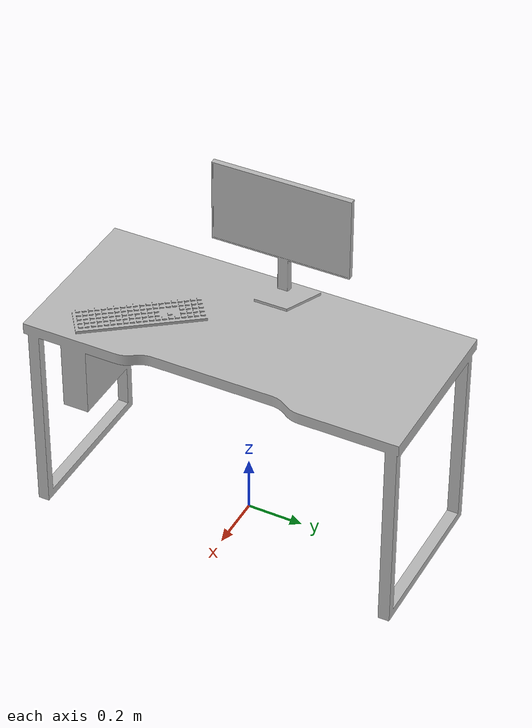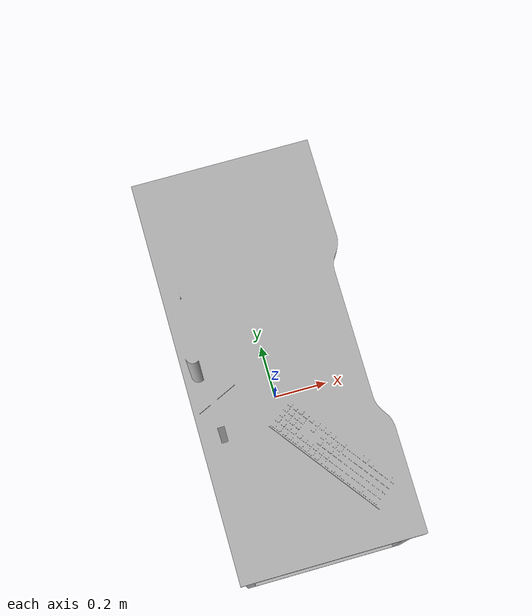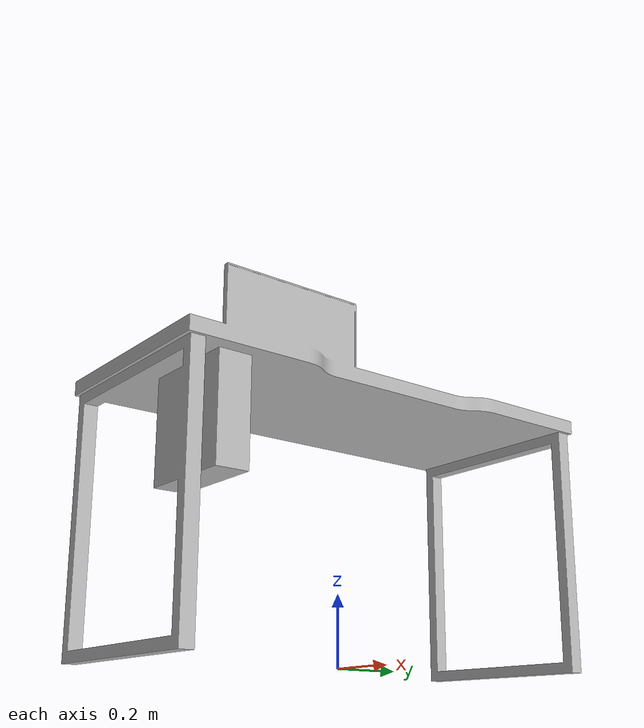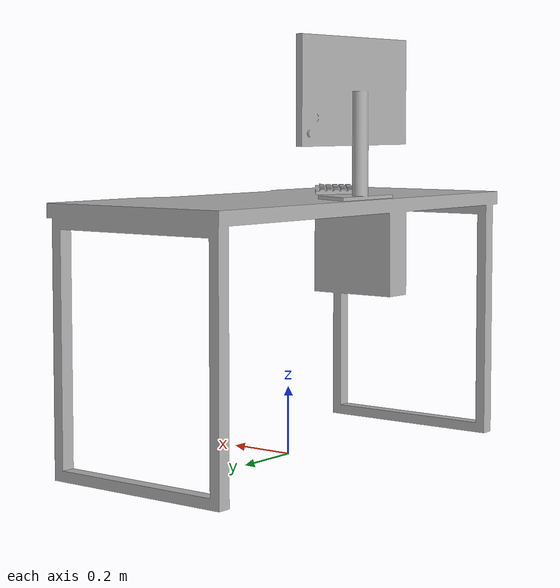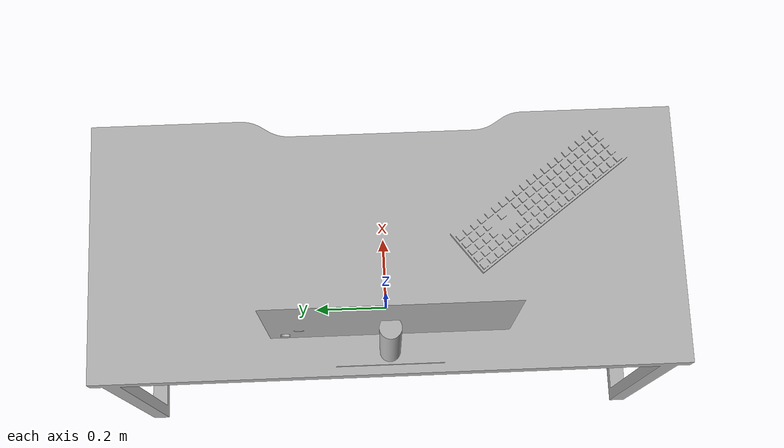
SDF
<?xml version='1.0' encoding='utf-8'?>
<sdf version="1.10">
    <model name="Desk">
        <static>true</static>
        <link name="body">
            <pose>0 0 0 0 0 0</pose>
            <visual name="visual">
                <geometry>
                    <mesh>
                        <uri>model://Desk/meshes/Desk2.obj</uri>
                    </mesh>
                </geometry>
            </visual>
            <collision name="collision">
                <geometry>
                    <mesh>
                        <uri>model://Desk/meshes/Desk2.obj</uri>
                    </mesh>
                </geometry>
            </collision>
        </link>
    </model>
</sdf>
